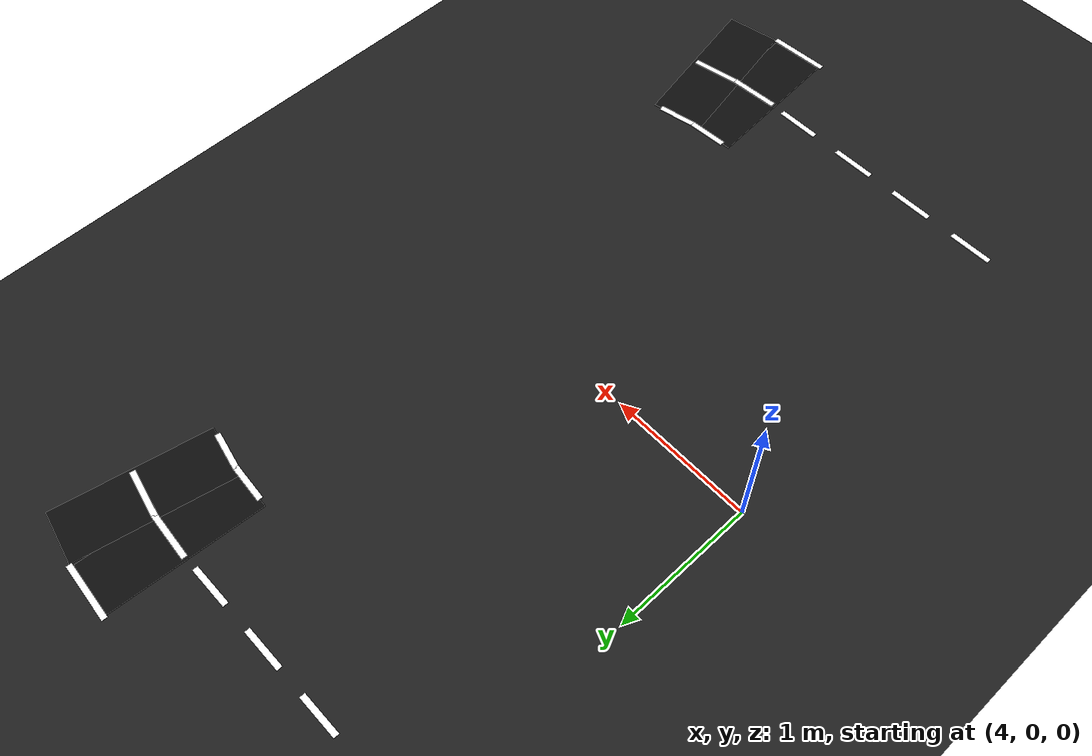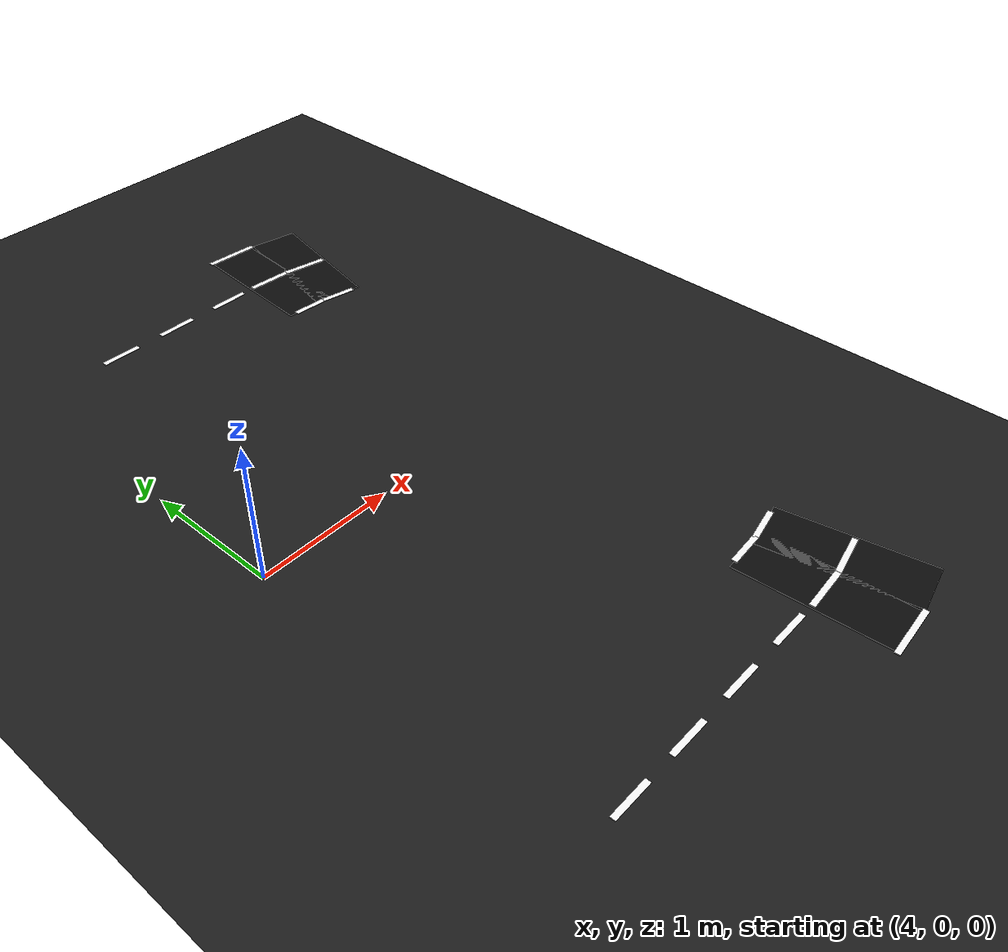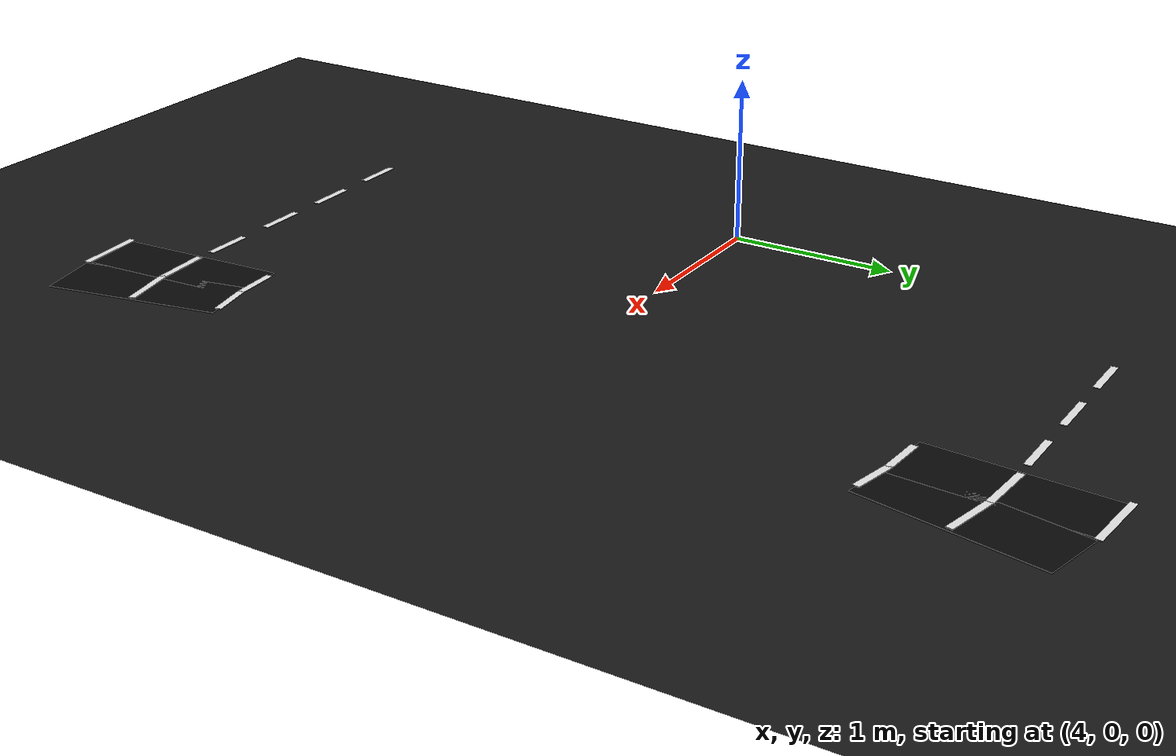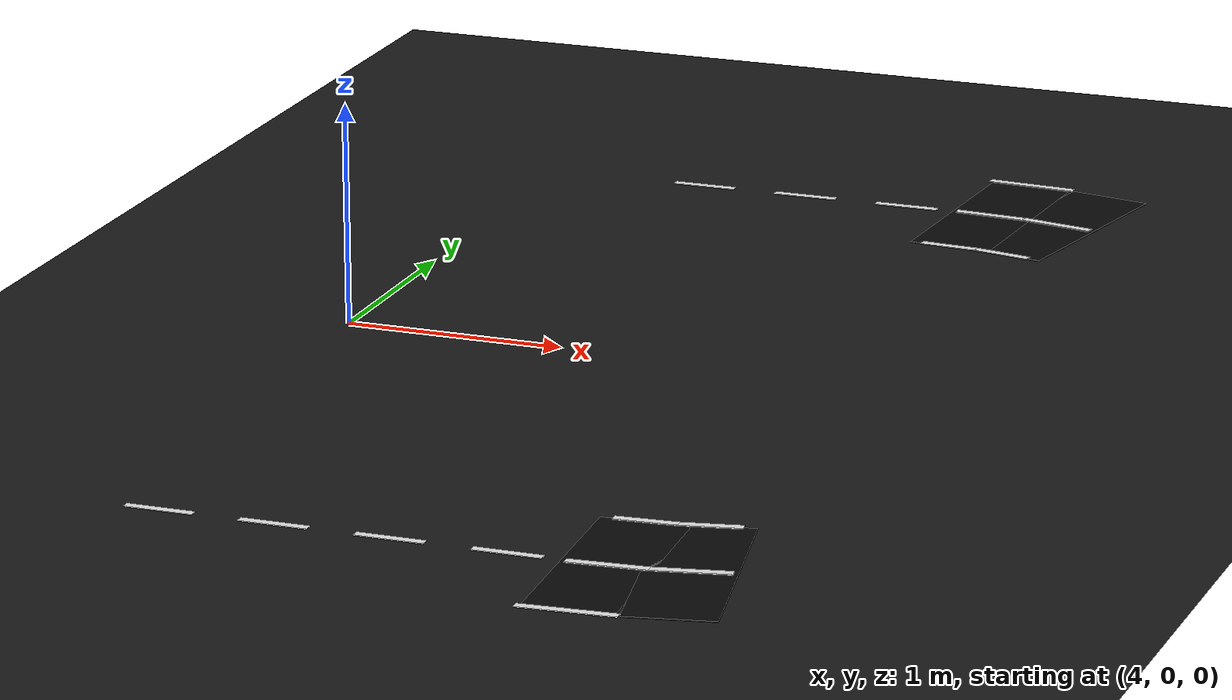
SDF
<sdf version="1.6">
 <world name="oval_lane_world">
  <model name="ground_plane">
   <static>true</static>
   <link name="link">
    <collision name="collision">
     <geometry><plane><normal>0 0 1</normal><size>200 200</size></plane></geometry>
     <surface><friction><ode><mu>1.0</mu><mu2>1.0</mu2></ode></friction></surface>
    </collision>
    <visual name="visual">
     <geometry><plane><normal>0 0 1</normal><size>200 200</size></plane></geometry>
     <material><ambient>0.10 0.10 0.10 1</ambient><diffuse>0.12 0.12 0.12 1</diffuse></material>
    </visual>
   </link>
  </model>
  <model name="dl_bot_1_20">
   <static>true</static>
   <pose>4.25000 -2.53400 0.00700 0.0 0.0 0.00000</pose>
   <link name="link">
    <visual name="visual">
     <geometry><box><size>0.30000 0.04000 0.00400</size></box></geometry>
     <material>
      <ambient>1.000 1.000 1.000 1</ambient>
      <diffuse>1.000 1.000 1.000 1</diffuse>
      <specular>0.05 0.05 0.05 1</specular>
     </material>
    </visual>
   </link>
  </model>
  <model name="dl_top_1_21">
   <static>true</static>
   <pose>4.75000 2.53400 0.00700 0.0 0.0 0.00000</pose>
   <link name="link">
    <visual name="visual">
     <geometry><box><size>0.30000 0.04000 0.00400</size></box></geometry>
     <material>
      <ambient>1.000 1.000 1.000 1</ambient>
      <diffuse>1.000 1.000 1.000 1</diffuse>
      <specular>0.05 0.05 0.05 1</specular>
     </material>
    </visual>
   </link>
  </model>
  <model name="dl_bot_1_21">
   <static>true</static>
   <pose>4.75000 -2.53400 0.00700 0.0 0.0 0.00000</pose>
   <link name="link">
    <visual name="visual">
     <geometry><box><size>0.30000 0.04000 0.00400</size></box></geometry>
     <material>
      <ambient>1.000 1.000 1.000 1</ambient>
      <diffuse>1.000 1.000 1.000 1</diffuse>
      <specular>0.05 0.05 0.05 1</specular>
     </material>
    </visual>
   </link>
  </model>
  <model name="dl_top_1_22">
   <static>true</static>
   <pose>5.25000 2.53400 0.00700 0.0 0.0 0.00000</pose>
   <link name="link">
    <visual name="visual">
     <geometry><box><size>0.30000 0.04000 0.00400</size></box></geometry>
     <material>
      <ambient>1.000 1.000 1.000 1</ambient>
      <diffuse>1.000 1.000 1.000 1</diffuse>
      <specular>0.05 0.05 0.05 1</specular>
     </material>
    </visual>
   </link>
  </model>
  <model name="dl_bot_1_22">
   <static>true</static>
   <pose>5.25000 -2.53400 0.00700 0.0 0.0 0.00000</pose>
   <link name="link">
    <visual name="visual">
     <geometry><box><size>0.30000 0.04000 0.00400</size></box></geometry>
     <material>
      <ambient>1.000 1.000 1.000 1</ambient>
      <diffuse>1.000 1.000 1.000 1</diffuse>
      <specular>0.05 0.05 0.05 1</specular>
     </material>
    </visual>
   </link>
  </model>
  <model name="dl_top_1_23">
   <static>true</static>
   <pose>5.75000 2.53400 0.00700 0.0 0.0 0.00000</pose>
   <link name="link">
    <visual name="visual">
     <geometry><box><size>0.30000 0.04000 0.00400</size></box></geometry>
     <material>
      <ambient>1.000 1.000 1.000 1</ambient>
      <diffuse>1.000 1.000 1.000 1</diffuse>
      <specular>0.05 0.05 0.05 1</specular>
     </material>
    </visual>
   </link>
  </model>
  <model name="dl_bot_1_23">
   <static>true</static>
   <pose>5.75000 -2.53400 0.00700 0.0 0.0 0.00000</pose>
   <link name="link">
    <visual name="visual">
     <geometry><box><size>0.30000 0.04000 0.00400</size></box></geometry>
     <material>
      <ambient>1.000 1.000 1.000 1</ambient>
      <diffuse>1.000 1.000 1.000 1</diffuse>
      <specular>0.05 0.05 0.05 1</specular>
     </material>
    </visual>
   </link>
  </model>
  <model name="road_r_0">
   <static>true</static>
   <pose>6.16573 2.52857 0.00250 0.0 0.0 -0.06545</pose>
   <link name="link">
    <visual name="visual">
     <geometry><box><size>0.38284 1.06800 0.00500</size></box></geometry>
     <material>
      <ambient>0.030 0.030 0.030 1</ambient>
      <diffuse>0.050 0.050 0.050 1</diffuse>
      <specular>0.05 0.05 0.05 1</specular>
     </material>
    </visual>
   </link>
  </model>
  <model name="cl_r_0_0">
   <static>true</static>
   <pose>6.13081 1.99572 0.00700 0.0 0.0 -0.06545</pose>
   <link name="link">
    <visual name="visual">
     <geometry><box><size>0.27208 0.04000 0.00400</size></box></geometry>
     <material>
      <ambient>1.000 1.000 1.000 1</ambient>
      <diffuse>1.000 1.000 1.000 1</diffuse>
      <specular>0.05 0.05 0.05 1</specular>
     </material>
    </visual>
   </link>
  </model>
  <model name="cl_r_1_0">
   <static>true</static>
   <pose>6.16573 2.52857 0.00700 0.0 0.0 -0.06545</pose>
   <link name="link">
    <visual name="visual">
     <geometry><box><size>0.34472 0.04000 0.00400</size></box></geometry>
     <material>
      <ambient>1.000 1.000 1.000 1</ambient>
      <diffuse>1.000 1.000 1.000 1</diffuse>
      <specular>0.05 0.05 0.05 1</specular>
     </material>
    </visual>
   </link>
  </model>
  <model name="cl_r_2_0">
   <static>true</static>
   <pose>6.20066 3.06143 0.00700 0.0 0.0 -0.06545</pose>
   <link name="link">
    <visual name="visual">
     <geometry><box><size>0.41737 0.04000 0.00400</size></box></geometry>
     <material>
      <ambient>1.000 1.000 1.000 1</ambient>
      <diffuse>1.000 1.000 1.000 1</diffuse>
      <specular>0.05 0.05 0.05 1</specular>
     </material>
    </visual>
   </link>
  </model>
  <model name="road_r_1">
   <static>true</static>
   <pose>6.49436 2.48531 0.00250 0.0 0.0 -0.19635</pose>
   <link name="link">
    <visual name="visual">
     <geometry><box><size>0.38284 1.06800 0.00500</size></box></geometry>
     <material>
      <ambient>0.030 0.030 0.030 1</ambient>
      <diffuse>0.050 0.050 0.050 1</diffuse>
      <specular>0.05 0.05 0.05 1</specular>
     </material>
    </visual>
   </link>
  </model>
  <model name="cl_r_0_1">
   <static>true</static>
   <pose>6.39018 1.96157 0.00700 0.0 0.0 -0.19635</pose>
   <link name="link">
    <visual name="visual">
     <geometry><box><size>0.27208 0.04000 0.00400</size></box></geometry>
     <material>
      <ambient>1.000 1.000 1.000 1</ambient>
      <diffuse>1.000 1.000 1.000 1</diffuse>
      <specular>0.05 0.05 0.05 1</specular>
     </material>
    </visual>
   </link>
  </model>
  <model name="cl_r_1_1">
   <static>true</static>
   <pose>6.49436 2.48531 0.00700 0.0 0.0 -0.19635</pose>
   <link name="link">
    <visual name="visual">
     <geometry><box><size>0.34472 0.04000 0.00400</size></box></geometry>
     <material>
      <ambient>1.000 1.000 1.000 1</ambient>
      <diffuse>1.000 1.000 1.000 1</diffuse>
      <specular>0.05 0.05 0.05 1</specular>
     </material>
    </visual>
   </link>
  </model>
  <model name="road_r_22">
   <static>true</static>
   <pose>6.49436 -2.48531 0.00250 0.0 0.0 -2.94524</pose>
   <link name="link">
    <visual name="visual">
     <geometry><box><size>0.38284 1.06800 0.00500</size></box></geometry>
     <material>
      <ambient>0.030 0.030 0.030 1</ambient>
      <diffuse>0.050 0.050 0.050 1</diffuse>
      <specular>0.05 0.05 0.05 1</specular>
     </material>
    </visual>
   </link>
  </model>
  <model name="cl_r_0_22">
   <static>true</static>
   <pose>6.39018 -1.96157 0.00700 0.0 0.0 -2.94524</pose>
   <link name="link">
    <visual name="visual">
     <geometry><box><size>0.27208 0.04000 0.00400</size></box></geometry>
     <material>
      <ambient>1.000 1.000 1.000 1</ambient>
      <diffuse>1.000 1.000 1.000 1</diffuse>
      <specular>0.05 0.05 0.05 1</specular>
     </material>
    </visual>
   </link>
  </model>
  <model name="cl_r_1_22">
   <static>true</static>
   <pose>6.49436 -2.48531 0.00700 0.0 0.0 -2.94524</pose>
   <link name="link">
    <visual name="visual">
     <geometry><box><size>0.34472 0.04000 0.00400</size></box></geometry>
     <material>
      <ambient>1.000 1.000 1.000 1</ambient>
      <diffuse>1.000 1.000 1.000 1</diffuse>
      <specular>0.05 0.05 0.05 1</specular>
     </material>
    </visual>
   </link>
  </model>
  <model name="road_r_23">
   <static>true</static>
   <pose>6.16573 -2.52857 0.00250 0.0 0.0 -3.07614</pose>
   <link name="link">
    <visual name="visual">
     <geometry><box><size>0.38284 1.06800 0.00500</size></box></geometry>
     <material>
      <ambient>0.030 0.030 0.030 1</ambient>
      <diffuse>0.050 0.050 0.050 1</diffuse>
      <specular>0.05 0.05 0.05 1</specular>
     </material>
    </visual>
   </link>
  </model>
  <model name="cl_r_0_23">
   <static>true</static>
   <pose>6.13081 -1.99572 0.00700 0.0 0.0 -3.07614</pose>
   <link name="link">
    <visual name="visual">
     <geometry><box><size>0.27208 0.04000 0.00400</size></box></geometry>
     <material>
      <ambient>1.000 1.000 1.000 1</ambient>
      <diffuse>1.000 1.000 1.000 1</diffuse>
      <specular>0.05 0.05 0.05 1</specular>
     </material>
    </visual>
   </link>
  </model>
  <model name="cl_r_1_23">
   <static>true</static>
   <pose>6.16573 -2.52857 0.00700 0.0 0.0 -3.07614</pose>
   <link name="link">
    <visual name="visual">
     <geometry><box><size>0.34472 0.04000 0.00400</size></box></geometry>
     <material>
      <ambient>1.000 1.000 1.000 1</ambient>
      <diffuse>1.000 1.000 1.000 1</diffuse>
      <specular>0.05 0.05 0.05 1</specular>
     </material>
    </visual>
   </link>
  </model>
  <model name="cl_r_2_23">
   <static>true</static>
   <pose>6.20066 -3.06143 0.00700 0.0 0.0 -3.07614</pose>
   <link name="link">
    <visual name="visual">
     <geometry><box><size>0.41737 0.04000 0.00400</size></box></geometry>
     <material>
      <ambient>1.000 1.000 1.000 1</ambient>
      <diffuse>1.000 1.000 1.000 1</diffuse>
      <specular>0.05 0.05 0.05 1</specular>
     </material>
    </visual>
   </link>
  </model>
 </world>
</sdf>
